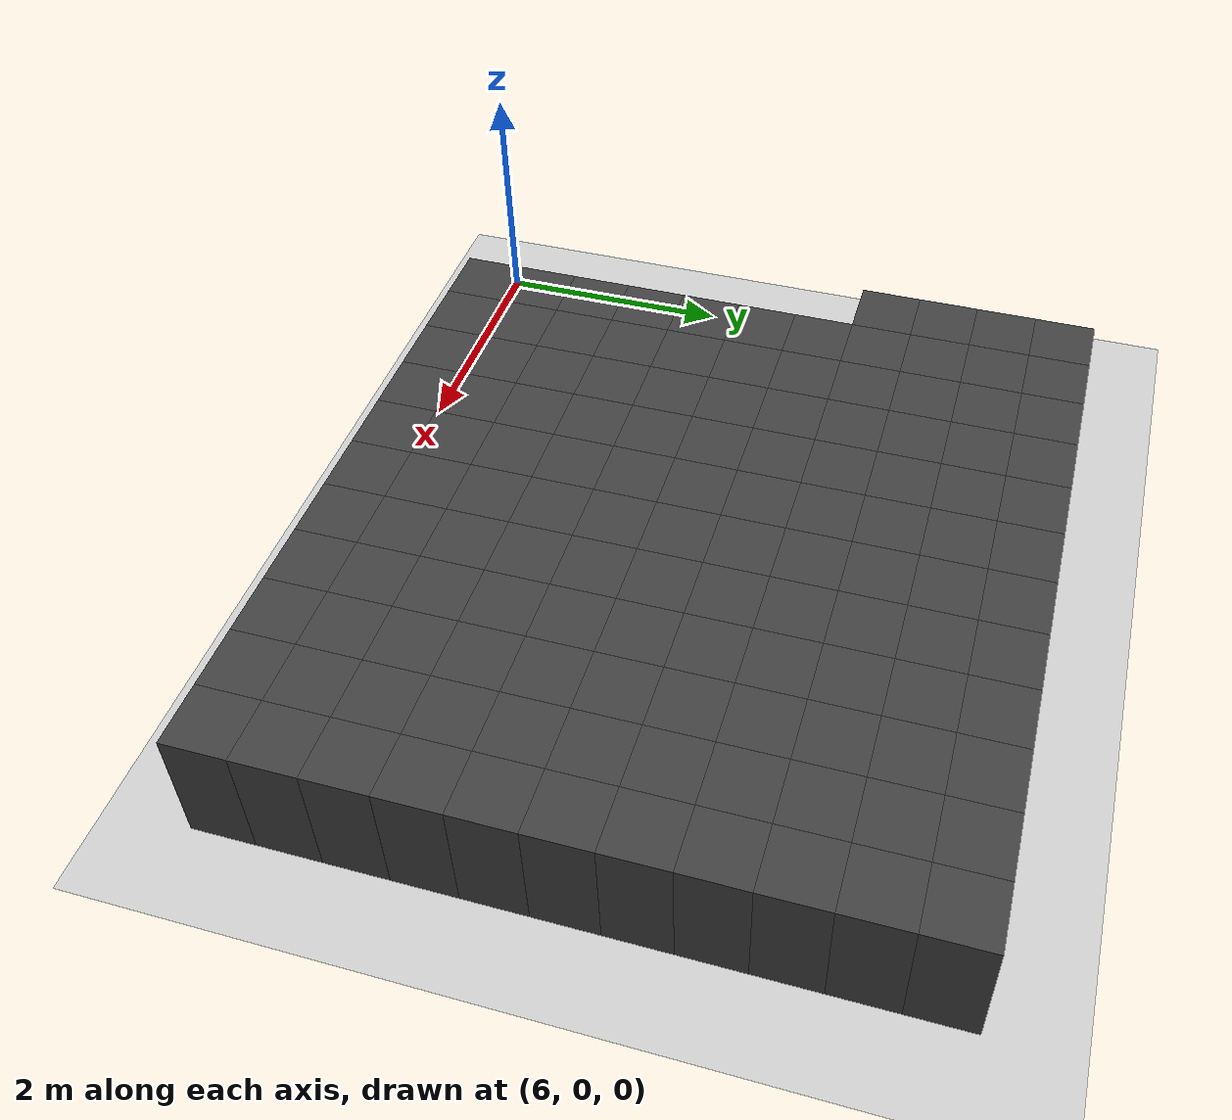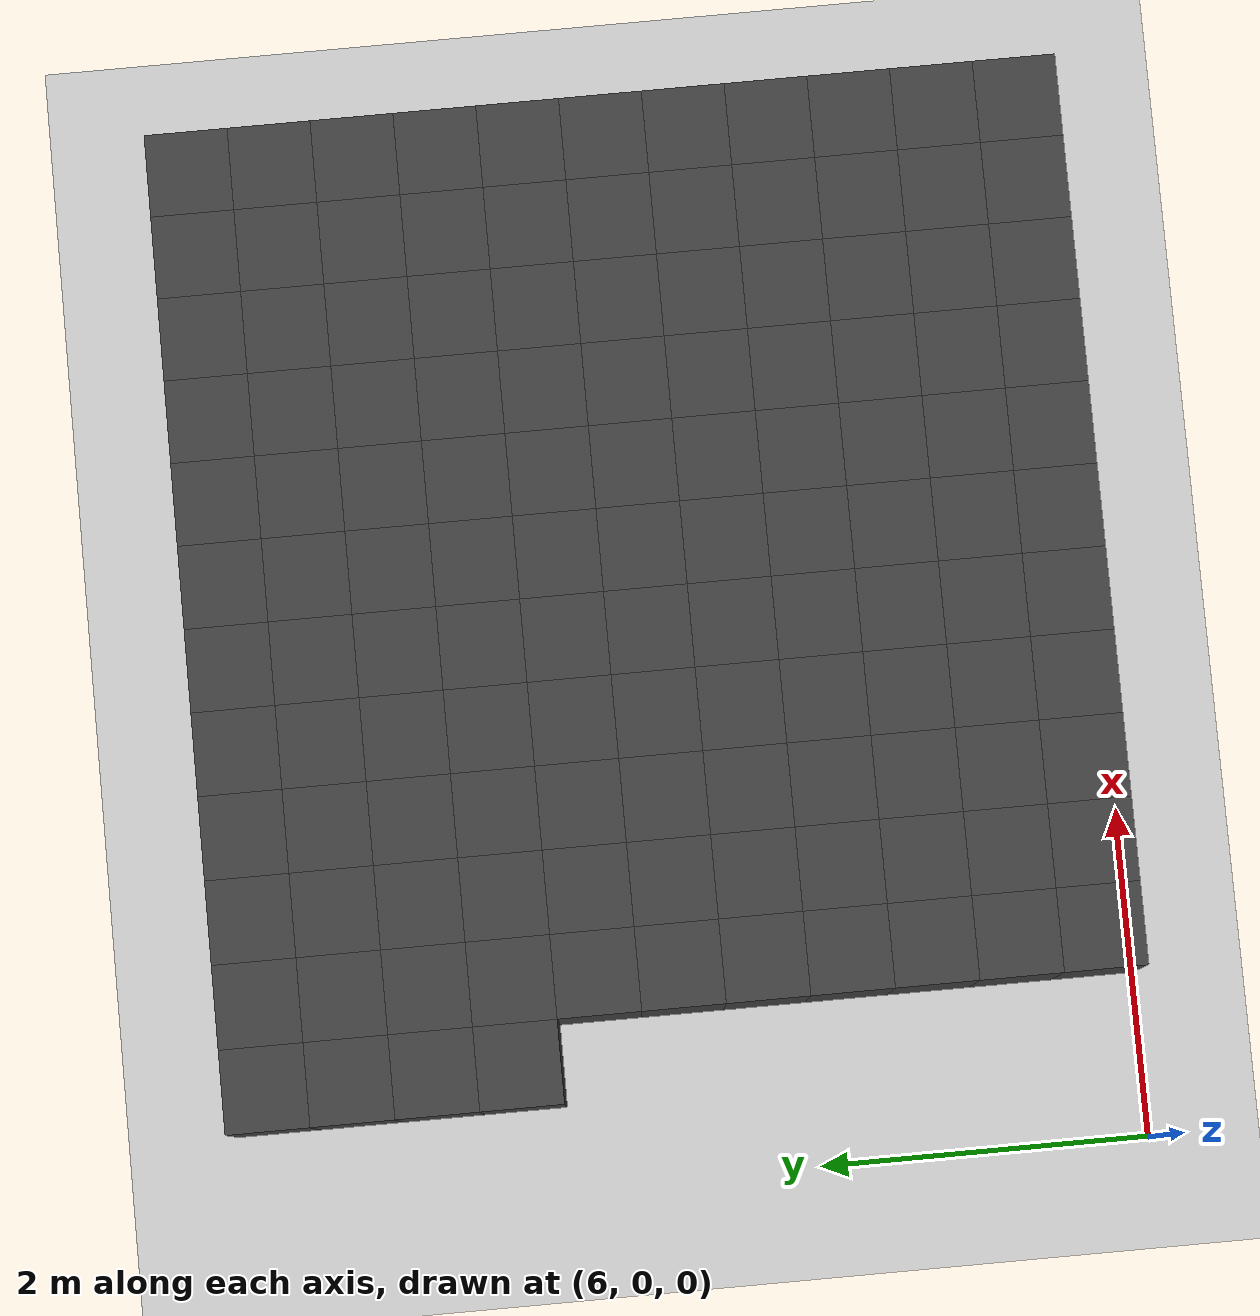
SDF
<sdf version="1.7">
 <world name="map_14802">
  <model name="ground_plane">
   <static>true</static>
   <link name="link">
    <collision name="collision">
     <geometry><plane><normal>0 0 1</normal><size>200 200</size></plane></geometry>
    </collision>
    <visual name="visual">
     <geometry><plane><normal>0 0 1</normal><size>200 200</size></plane></geometry>
     <material><ambient>0.8 0.8 0.8 1</ambient><diffuse>0.8 0.8 0.8 1</diffuse></material>
    </visual>
   </link>
  </model>
  <model name="maze_environment">
   <static>true</static>
   <link name="wall_514">
    <pose>6.750 5.250 0.500 0 0 0</pose>
    <collision name="col"><geometry><box><size>0.5 0.5 1.0</size></box></geometry></collision>
    <visual name="vis">
     <geometry><box><size>0.5 0.5 1.0</size></box></geometry>
     <material><ambient>0.15 0.15 0.15 1</ambient><diffuse>0.25 0.25 0.25 1</diffuse></material>
    </visual>
   </link>
   <link name="wall_515">
    <pose>7.250 5.250 0.500 0 0 0</pose>
    <collision name="col"><geometry><box><size>0.5 0.5 1.0</size></box></geometry></collision>
    <visual name="vis">
     <geometry><box><size>0.5 0.5 1.0</size></box></geometry>
     <material><ambient>0.15 0.15 0.15 1</ambient><diffuse>0.25 0.25 0.25 1</diffuse></material>
    </visual>
   </link>
   <link name="wall_516">
    <pose>7.750 5.250 0.500 0 0 0</pose>
    <collision name="col"><geometry><box><size>0.5 0.5 1.0</size></box></geometry></collision>
    <visual name="vis">
     <geometry><box><size>0.5 0.5 1.0</size></box></geometry>
     <material><ambient>0.15 0.15 0.15 1</ambient><diffuse>0.25 0.25 0.25 1</diffuse></material>
    </visual>
   </link>
   <link name="wall_517">
    <pose>8.250 5.250 0.500 0 0 0</pose>
    <collision name="col"><geometry><box><size>0.5 0.5 1.0</size></box></geometry></collision>
    <visual name="vis">
     <geometry><box><size>0.5 0.5 1.0</size></box></geometry>
     <material><ambient>0.15 0.15 0.15 1</ambient><diffuse>0.25 0.25 0.25 1</diffuse></material>
    </visual>
   </link>
   <link name="wall_518">
    <pose>8.750 5.250 0.500 0 0 0</pose>
    <collision name="col"><geometry><box><size>0.5 0.5 1.0</size></box></geometry></collision>
    <visual name="vis">
     <geometry><box><size>0.5 0.5 1.0</size></box></geometry>
     <material><ambient>0.15 0.15 0.15 1</ambient><diffuse>0.25 0.25 0.25 1</diffuse></material>
    </visual>
   </link>
   <link name="wall_519">
    <pose>9.250 5.250 0.500 0 0 0</pose>
    <collision name="col"><geometry><box><size>0.5 0.5 1.0</size></box></geometry></collision>
    <visual name="vis">
     <geometry><box><size>0.5 0.5 1.0</size></box></geometry>
     <material><ambient>0.15 0.15 0.15 1</ambient><diffuse>0.25 0.25 0.25 1</diffuse></material>
    </visual>
   </link>
   <link name="wall_520">
    <pose>9.750 5.250 0.500 0 0 0</pose>
    <collision name="col"><geometry><box><size>0.5 0.5 1.0</size></box></geometry></collision>
    <visual name="vis">
     <geometry><box><size>0.5 0.5 1.0</size></box></geometry>
     <material><ambient>0.15 0.15 0.15 1</ambient><diffuse>0.25 0.25 0.25 1</diffuse></material>
    </visual>
   </link>
   <link name="wall_521">
    <pose>10.250 5.250 0.500 0 0 0</pose>
    <collision name="col"><geometry><box><size>0.5 0.5 1.0</size></box></geometry></collision>
    <visual name="vis">
     <geometry><box><size>0.5 0.5 1.0</size></box></geometry>
     <material><ambient>0.15 0.15 0.15 1</ambient><diffuse>0.25 0.25 0.25 1</diffuse></material>
    </visual>
   </link>
   <link name="wall_522">
    <pose>10.750 5.250 0.500 0 0 0</pose>
    <collision name="col"><geometry><box><size>0.5 0.5 1.0</size></box></geometry></collision>
    <visual name="vis">
     <geometry><box><size>0.5 0.5 1.0</size></box></geometry>
     <material><ambient>0.15 0.15 0.15 1</ambient><diffuse>0.25 0.25 0.25 1</diffuse></material>
    </visual>
   </link>
   <link name="wall_523">
    <pose>11.250 5.250 0.500 0 0 0</pose>
    <collision name="col"><geometry><box><size>0.5 0.5 1.0</size></box></geometry></collision>
    <visual name="vis">
     <geometry><box><size>0.5 0.5 1.0</size></box></geometry>
     <material><ambient>0.15 0.15 0.15 1</ambient><diffuse>0.25 0.25 0.25 1</diffuse></material>
    </visual>
   </link>
   <link name="wall_524">
    <pose>11.750 5.250 0.500 0 0 0</pose>
    <collision name="col"><geometry><box><size>0.5 0.5 1.0</size></box></geometry></collision>
    <visual name="vis">
     <geometry><box><size>0.5 0.5 1.0</size></box></geometry>
     <material><ambient>0.15 0.15 0.15 1</ambient><diffuse>0.25 0.25 0.25 1</diffuse></material>
    </visual>
   </link>
   <link name="wall_525">
    <pose>12.250 5.250 0.500 0 0 0</pose>
    <collision name="col"><geometry><box><size>0.5 0.5 1.0</size></box></geometry></collision>
    <visual name="vis">
     <geometry><box><size>0.5 0.5 1.0</size></box></geometry>
     <material><ambient>0.15 0.15 0.15 1</ambient><diffuse>0.25 0.25 0.25 1</diffuse></material>
    </visual>
   </link>
   <link name="wall_554">
    <pose>6.750 4.750 0.500 0 0 0</pose>
    <collision name="col"><geometry><box><size>0.5 0.5 1.0</size></box></geometry></collision>
    <visual name="vis">
     <geometry><box><size>0.5 0.5 1.0</size></box></geometry>
     <material><ambient>0.15 0.15 0.15 1</ambient><diffuse>0.25 0.25 0.25 1</diffuse></material>
    </visual>
   </link>
   <link name="wall_555">
    <pose>7.250 4.750 0.500 0 0 0</pose>
    <collision name="col"><geometry><box><size>0.5 0.5 1.0</size></box></geometry></collision>
    <visual name="vis">
     <geometry><box><size>0.5 0.5 1.0</size></box></geometry>
     <material><ambient>0.15 0.15 0.15 1</ambient><diffuse>0.25 0.25 0.25 1</diffuse></material>
    </visual>
   </link>
   <link name="wall_556">
    <pose>7.750 4.750 0.500 0 0 0</pose>
    <collision name="col"><geometry><box><size>0.5 0.5 1.0</size></box></geometry></collision>
    <visual name="vis">
     <geometry><box><size>0.5 0.5 1.0</size></box></geometry>
     <material><ambient>0.15 0.15 0.15 1</ambient><diffuse>0.25 0.25 0.25 1</diffuse></material>
    </visual>
   </link>
   <link name="wall_557">
    <pose>8.250 4.750 0.500 0 0 0</pose>
    <collision name="col"><geometry><box><size>0.5 0.5 1.0</size></box></geometry></collision>
    <visual name="vis">
     <geometry><box><size>0.5 0.5 1.0</size></box></geometry>
     <material><ambient>0.15 0.15 0.15 1</ambient><diffuse>0.25 0.25 0.25 1</diffuse></material>
    </visual>
   </link>
   <link name="wall_558">
    <pose>8.750 4.750 0.500 0 0 0</pose>
    <collision name="col"><geometry><box><size>0.5 0.5 1.0</size></box></geometry></collision>
    <visual name="vis">
     <geometry><box><size>0.5 0.5 1.0</size></box></geometry>
     <material><ambient>0.15 0.15 0.15 1</ambient><diffuse>0.25 0.25 0.25 1</diffuse></material>
    </visual>
   </link>
   <link name="wall_559">
    <pose>9.250 4.750 0.500 0 0 0</pose>
    <collision name="col"><geometry><box><size>0.5 0.5 1.0</size></box></geometry></collision>
    <visual name="vis">
     <geometry><box><size>0.5 0.5 1.0</size></box></geometry>
     <material><ambient>0.15 0.15 0.15 1</ambient><diffuse>0.25 0.25 0.25 1</diffuse></material>
    </visual>
   </link>
   <link name="wall_560">
    <pose>9.750 4.750 0.500 0 0 0</pose>
    <collision name="col"><geometry><box><size>0.5 0.5 1.0</size></box></geometry></collision>
    <visual name="vis">
     <geometry><box><size>0.5 0.5 1.0</size></box></geometry>
     <material><ambient>0.15 0.15 0.15 1</ambient><diffuse>0.25 0.25 0.25 1</diffuse></material>
    </visual>
   </link>
   <link name="wall_561">
    <pose>10.250 4.750 0.500 0 0 0</pose>
    <collision name="col"><geometry><box><size>0.5 0.5 1.0</size></box></geometry></collision>
    <visual name="vis">
     <geometry><box><size>0.5 0.5 1.0</size></box></geometry>
     <material><ambient>0.15 0.15 0.15 1</ambient><diffuse>0.25 0.25 0.25 1</diffuse></material>
    </visual>
   </link>
   <link name="wall_562">
    <pose>10.750 4.750 0.500 0 0 0</pose>
    <collision name="col"><geometry><box><size>0.5 0.5 1.0</size></box></geometry></collision>
    <visual name="vis">
     <geometry><box><size>0.5 0.5 1.0</size></box></geometry>
     <material><ambient>0.15 0.15 0.15 1</ambient><diffuse>0.25 0.25 0.25 1</diffuse></material>
    </visual>
   </link>
   <link name="wall_563">
    <pose>11.250 4.750 0.500 0 0 0</pose>
    <collision name="col"><geometry><box><size>0.5 0.5 1.0</size></box></geometry></collision>
    <visual name="vis">
     <geometry><box><size>0.5 0.5 1.0</size></box></geometry>
     <material><ambient>0.15 0.15 0.15 1</ambient><diffuse>0.25 0.25 0.25 1</diffuse></material>
    </visual>
   </link>
   <link name="wall_564">
    <pose>11.750 4.750 0.500 0 0 0</pose>
    <collision name="col"><geometry><box><size>0.5 0.5 1.0</size></box></geometry></collision>
    <visual name="vis">
     <geometry><box><size>0.5 0.5 1.0</size></box></geometry>
     <material><ambient>0.15 0.15 0.15 1</ambient><diffuse>0.25 0.25 0.25 1</diffuse></material>
    </visual>
   </link>
   <link name="wall_565">
    <pose>12.250 4.750 0.500 0 0 0</pose>
    <collision name="col"><geometry><box><size>0.5 0.5 1.0</size></box></geometry></collision>
    <visual name="vis">
     <geometry><box><size>0.5 0.5 1.0</size></box></geometry>
     <material><ambient>0.15 0.15 0.15 1</ambient><diffuse>0.25 0.25 0.25 1</diffuse></material>
    </visual>
   </link>
   <link name="wall_594">
    <pose>6.750 4.250 0.500 0 0 0</pose>
    <collision name="col"><geometry><box><size>0.5 0.5 1.0</size></box></geometry></collision>
    <visual name="vis">
     <geometry><box><size>0.5 0.5 1.0</size></box></geometry>
     <material><ambient>0.15 0.15 0.15 1</ambient><diffuse>0.25 0.25 0.25 1</diffuse></material>
    </visual>
   </link>
   <link name="wall_595">
    <pose>7.250 4.250 0.500 0 0 0</pose>
    <collision name="col"><geometry><box><size>0.5 0.5 1.0</size></box></geometry></collision>
    <visual name="vis">
     <geometry><box><size>0.5 0.5 1.0</size></box></geometry>
     <material><ambient>0.15 0.15 0.15 1</ambient><diffuse>0.25 0.25 0.25 1</diffuse></material>
    </visual>
   </link>
   <link name="wall_596">
    <pose>7.750 4.250 0.500 0 0 0</pose>
    <collision name="col"><geometry><box><size>0.5 0.5 1.0</size></box></geometry></collision>
    <visual name="vis">
     <geometry><box><size>0.5 0.5 1.0</size></box></geometry>
     <material><ambient>0.15 0.15 0.15 1</ambient><diffuse>0.25 0.25 0.25 1</diffuse></material>
    </visual>
   </link>
   <link name="wall_597">
    <pose>8.250 4.250 0.500 0 0 0</pose>
    <collision name="col"><geometry><box><size>0.5 0.5 1.0</size></box></geometry></collision>
    <visual name="vis">
     <geometry><box><size>0.5 0.5 1.0</size></box></geometry>
     <material><ambient>0.15 0.15 0.15 1</ambient><diffuse>0.25 0.25 0.25 1</diffuse></material>
    </visual>
   </link>
   <link name="wall_598">
    <pose>8.750 4.250 0.500 0 0 0</pose>
    <collision name="col"><geometry><box><size>0.5 0.5 1.0</size></box></geometry></collision>
    <visual name="vis">
     <geometry><box><size>0.5 0.5 1.0</size></box></geometry>
     <material><ambient>0.15 0.15 0.15 1</ambient><diffuse>0.25 0.25 0.25 1</diffuse></material>
    </visual>
   </link>
   <link name="wall_599">
    <pose>9.250 4.250 0.500 0 0 0</pose>
    <collision name="col"><geometry><box><size>0.5 0.5 1.0</size></box></geometry></collision>
    <visual name="vis">
     <geometry><box><size>0.5 0.5 1.0</size></box></geometry>
     <material><ambient>0.15 0.15 0.15 1</ambient><diffuse>0.25 0.25 0.25 1</diffuse></material>
    </visual>
   </link>
   <link name="wall_600">
    <pose>9.750 4.250 0.500 0 0 0</pose>
    <collision name="col"><geometry><box><size>0.5 0.5 1.0</size></box></geometry></collision>
    <visual name="vis">
     <geometry><box><size>0.5 0.5 1.0</size></box></geometry>
     <material><ambient>0.15 0.15 0.15 1</ambient><diffuse>0.25 0.25 0.25 1</diffuse></material>
    </visual>
   </link>
   <link name="wall_601">
    <pose>10.250 4.250 0.500 0 0 0</pose>
    <collision name="col"><geometry><box><size>0.5 0.5 1.0</size></box></geometry></collision>
    <visual name="vis">
     <geometry><box><size>0.5 0.5 1.0</size></box></geometry>
     <material><ambient>0.15 0.15 0.15 1</ambient><diffuse>0.25 0.25 0.25 1</diffuse></material>
    </visual>
   </link>
   <link name="wall_602">
    <pose>10.750 4.250 0.500 0 0 0</pose>
    <collision name="col"><geometry><box><size>0.5 0.5 1.0</size></box></geometry></collision>
    <visual name="vis">
     <geometry><box><size>0.5 0.5 1.0</size></box></geometry>
     <material><ambient>0.15 0.15 0.15 1</ambient><diffuse>0.25 0.25 0.25 1</diffuse></material>
    </visual>
   </link>
   <link name="wall_603">
    <pose>11.250 4.250 0.500 0 0 0</pose>
    <collision name="col"><geometry><box><size>0.5 0.5 1.0</size></box></geometry></collision>
    <visual name="vis">
     <geometry><box><size>0.5 0.5 1.0</size></box></geometry>
     <material><ambient>0.15 0.15 0.15 1</ambient><diffuse>0.25 0.25 0.25 1</diffuse></material>
    </visual>
   </link>
   <link name="wall_604">
    <pose>11.750 4.250 0.500 0 0 0</pose>
    <collision name="col"><geometry><box><size>0.5 0.5 1.0</size></box></geometry></collision>
    <visual name="vis">
     <geometry><box><size>0.5 0.5 1.0</size></box></geometry>
     <material><ambient>0.15 0.15 0.15 1</ambient><diffuse>0.25 0.25 0.25 1</diffuse></material>
    </visual>
   </link>
   <link name="wall_605">
    <pose>12.250 4.250 0.500 0 0 0</pose>
    <collision name="col"><geometry><box><size>0.5 0.5 1.0</size></box></geometry></collision>
    <visual name="vis">
     <geometry><box><size>0.5 0.5 1.0</size></box></geometry>
     <material><ambient>0.15 0.15 0.15 1</ambient><diffuse>0.25 0.25 0.25 1</diffuse></material>
    </visual>
   </link>
   <link name="wall_634">
    <pose>6.750 3.750 0.500 0 0 0</pose>
    <collision name="col"><geometry><box><size>0.5 0.5 1.0</size></box></geometry></collision>
    <visual name="vis">
     <geometry><box><size>0.5 0.5 1.0</size></box></geometry>
     <material><ambient>0.15 0.15 0.15 1</ambient><diffuse>0.25 0.25 0.25 1</diffuse></material>
    </visual>
   </link>
   <link name="wall_635">
    <pose>7.250 3.750 0.500 0 0 0</pose>
    <collision name="col"><geometry><box><size>0.5 0.5 1.0</size></box></geometry></collision>
    <visual name="vis">
     <geometry><box><size>0.5 0.5 1.0</size></box></geometry>
     <material><ambient>0.15 0.15 0.15 1</ambient><diffuse>0.25 0.25 0.25 1</diffuse></material>
    </visual>
   </link>
   <link name="wall_636">
    <pose>7.750 3.750 0.500 0 0 0</pose>
    <collision name="col"><geometry><box><size>0.5 0.5 1.0</size></box></geometry></collision>
    <visual name="vis">
     <geometry><box><size>0.5 0.5 1.0</size></box></geometry>
     <material><ambient>0.15 0.15 0.15 1</ambient><diffuse>0.25 0.25 0.25 1</diffuse></material>
    </visual>
   </link>
   <link name="wall_637">
    <pose>8.250 3.750 0.500 0 0 0</pose>
    <collision name="col"><geometry><box><size>0.5 0.5 1.0</size></box></geometry></collision>
    <visual name="vis">
     <geometry><box><size>0.5 0.5 1.0</size></box></geometry>
     <material><ambient>0.15 0.15 0.15 1</ambient><diffuse>0.25 0.25 0.25 1</diffuse></material>
    </visual>
   </link>
   <link name="wall_638">
    <pose>8.750 3.750 0.500 0 0 0</pose>
    <collision name="col"><geometry><box><size>0.5 0.5 1.0</size></box></geometry></collision>
    <visual name="vis">
     <geometry><box><size>0.5 0.5 1.0</size></box></geometry>
     <material><ambient>0.15 0.15 0.15 1</ambient><diffuse>0.25 0.25 0.25 1</diffuse></material>
    </visual>
   </link>
   <link name="wall_639">
    <pose>9.250 3.750 0.500 0 0 0</pose>
    <collision name="col"><geometry><box><size>0.5 0.5 1.0</size></box></geometry></collision>
    <visual name="vis">
     <geometry><box><size>0.5 0.5 1.0</size></box></geometry>
     <material><ambient>0.15 0.15 0.15 1</ambient><diffuse>0.25 0.25 0.25 1</diffuse></material>
    </visual>
   </link>
   <link name="wall_640">
    <pose>9.750 3.750 0.500 0 0 0</pose>
    <collision name="col"><geometry><box><size>0.5 0.5 1.0</size></box></geometry></collision>
    <visual name="vis">
     <geometry><box><size>0.5 0.5 1.0</size></box></geometry>
     <material><ambient>0.15 0.15 0.15 1</ambient><diffuse>0.25 0.25 0.25 1</diffuse></material>
    </visual>
   </link>
   <link name="wall_641">
    <pose>10.250 3.750 0.500 0 0 0</pose>
    <collision name="col"><geometry><box><size>0.5 0.5 1.0</size></box></geometry></collision>
    <visual name="vis">
     <geometry><box><size>0.5 0.5 1.0</size></box></geometry>
     <material><ambient>0.15 0.15 0.15 1</ambient><diffuse>0.25 0.25 0.25 1</diffuse></material>
    </visual>
   </link>
   <link name="wall_642">
    <pose>10.750 3.750 0.500 0 0 0</pose>
    <collision name="col"><geometry><box><size>0.5 0.5 1.0</size></box></geometry></collision>
    <visual name="vis">
     <geometry><box><size>0.5 0.5 1.0</size></box></geometry>
     <material><ambient>0.15 0.15 0.15 1</ambient><diffuse>0.25 0.25 0.25 1</diffuse></material>
    </visual>
   </link>
   <link name="wall_643">
    <pose>11.250 3.750 0.500 0 0 0</pose>
    <collision name="col"><geometry><box><size>0.5 0.5 1.0</size></box></geometry></collision>
    <visual name="vis">
     <geometry><box><size>0.5 0.5 1.0</size></box></geometry>
     <material><ambient>0.15 0.15 0.15 1</ambient><diffuse>0.25 0.25 0.25 1</diffuse></material>
    </visual>
   </link>
   <link name="wall_644">
    <pose>11.750 3.750 0.500 0 0 0</pose>
    <collision name="col"><geometry><box><size>0.5 0.5 1.0</size></box></geometry></collision>
    <visual name="vis">
     <geometry><box><size>0.5 0.5 1.0</size></box></geometry>
     <material><ambient>0.15 0.15 0.15 1</ambient><diffuse>0.25 0.25 0.25 1</diffuse></material>
    </visual>
   </link>
   <link name="wall_645">
    <pose>12.250 3.750 0.500 0 0 0</pose>
    <collision name="col"><geometry><box><size>0.5 0.5 1.0</size></box></geometry></collision>
    <visual name="vis">
     <geometry><box><size>0.5 0.5 1.0</size></box></geometry>
     <material><ambient>0.15 0.15 0.15 1</ambient><diffuse>0.25 0.25 0.25 1</diffuse></material>
    </visual>
   </link>
   <link name="wall_676">
    <pose>7.250 3.250 0.500 0 0 0</pose>
    <collision name="col"><geometry><box><size>0.5 0.5 1.0</size></box></geometry></collision>
    <visual name="vis">
     <geometry><box><size>0.5 0.5 1.0</size></box></geometry>
     <material><ambient>0.15 0.15 0.15 1</ambient><diffuse>0.25 0.25 0.25 1</diffuse></material>
    </visual>
   </link>
   <link name="wall_677">
    <pose>7.750 3.250 0.500 0 0 0</pose>
    <collision name="col"><geometry><box><size>0.5 0.5 1.0</size></box></geometry></collision>
    <visual name="vis">
     <geometry><box><size>0.5 0.5 1.0</size></box></geometry>
     <material><ambient>0.15 0.15 0.15 1</ambient><diffuse>0.25 0.25 0.25 1</diffuse></material>
    </visual>
   </link>
   <link name="wall_678">
    <pose>8.250 3.250 0.500 0 0 0</pose>
    <collision name="col"><geometry><box><size>0.5 0.5 1.0</size></box></geometry></collision>
    <visual name="vis">
     <geometry><box><size>0.5 0.5 1.0</size></box></geometry>
     <material><ambient>0.15 0.15 0.15 1</ambient><diffuse>0.25 0.25 0.25 1</diffuse></material>
    </visual>
   </link>
   <link name="wall_679">
    <pose>8.750 3.250 0.500 0 0 0</pose>
    <collision name="col"><geometry><box><size>0.5 0.5 1.0</size></box></geometry></collision>
    <visual name="vis">
     <geometry><box><size>0.5 0.5 1.0</size></box></geometry>
     <material><ambient>0.15 0.15 0.15 1</ambient><diffuse>0.25 0.25 0.25 1</diffuse></material>
    </visual>
   </link>
   <link name="wall_680">
    <pose>9.250 3.250 0.500 0 0 0</pose>
    <collision name="col"><geometry><box><size>0.5 0.5 1.0</size></box></geometry></collision>
    <visual name="vis">
     <geometry><box><size>0.5 0.5 1.0</size></box></geometry>
     <material><ambient>0.15 0.15 0.15 1</ambient><diffuse>0.25 0.25 0.25 1</diffuse></material>
    </visual>
   </link>
   <link name="wall_681">
    <pose>9.750 3.250 0.500 0 0 0</pose>
    <collision name="col"><geometry><box><size>0.5 0.5 1.0</size></box></geometry></collision>
    <visual name="vis">
     <geometry><box><size>0.5 0.5 1.0</size></box></geometry>
     <material><ambient>0.15 0.15 0.15 1</ambient><diffuse>0.25 0.25 0.25 1</diffuse></material>
    </visual>
   </link>
   <link name="wall_682">
    <pose>10.250 3.250 0.500 0 0 0</pose>
    <collision name="col"><geometry><box><size>0.5 0.5 1.0</size></box></geometry></collision>
    <visual name="vis">
     <geometry><box><size>0.5 0.5 1.0</size></box></geometry>
     <material><ambient>0.15 0.15 0.15 1</ambient><diffuse>0.25 0.25 0.25 1</diffuse></material>
    </visual>
   </link>
   <link name="wall_683">
    <pose>10.750 3.250 0.500 0 0 0</pose>
    <collision name="col"><geometry><box><size>0.5 0.5 1.0</size></box></geometry></collision>
    <visual name="vis">
     <geometry><box><size>0.5 0.5 1.0</size></box></geometry>
     <material><ambient>0.15 0.15 0.15 1</ambient><diffuse>0.25 0.25 0.25 1</diffuse></material>
    </visual>
   </link>
   <link name="wall_684">
    <pose>11.250 3.250 0.500 0 0 0</pose>
    <collision name="col"><geometry><box><size>0.5 0.5 1.0</size></box></geometry></collision>
    <visual name="vis">
     <geometry><box><size>0.5 0.5 1.0</size></box></geometry>
     <material><ambient>0.15 0.15 0.15 1</ambient><diffuse>0.25 0.25 0.25 1</diffuse></material>
    </visual>
   </link>
   <link name="wall_685">
    <pose>11.750 3.250 0.500 0 0 0</pose>
    <collision name="col"><geometry><box><size>0.5 0.5 1.0</size></box></geometry></collision>
    <visual name="vis">
     <geometry><box><size>0.5 0.5 1.0</size></box></geometry>
     <material><ambient>0.15 0.15 0.15 1</ambient><diffuse>0.25 0.25 0.25 1</diffuse></material>
    </visual>
   </link>
   <link name="wall_686">
    <pose>12.250 3.250 0.500 0 0 0</pose>
    <collision name="col"><geometry><box><size>0.5 0.5 1.0</size></box></geometry></collision>
    <visual name="vis">
     <geometry><box><size>0.5 0.5 1.0</size></box></geometry>
     <material><ambient>0.15 0.15 0.15 1</ambient><diffuse>0.25 0.25 0.25 1</diffuse></material>
    </visual>
   </link>
   <link name="wall_716">
    <pose>7.250 2.750 0.500 0 0 0</pose>
    <collision name="col"><geometry><box><size>0.5 0.5 1.0</size></box></geometry></collision>
    <visual name="vis">
     <geometry><box><size>0.5 0.5 1.0</size></box></geometry>
     <material><ambient>0.15 0.15 0.15 1</ambient><diffuse>0.25 0.25 0.25 1</diffuse></material>
    </visual>
   </link>
   <link name="wall_717">
    <pose>7.750 2.750 0.500 0 0 0</pose>
    <collision name="col"><geometry><box><size>0.5 0.5 1.0</size></box></geometry></collision>
    <visual name="vis">
     <geometry><box><size>0.5 0.5 1.0</size></box></geometry>
     <material><ambient>0.15 0.15 0.15 1</ambient><diffuse>0.25 0.25 0.25 1</diffuse></material>
    </visual>
   </link>
   <link name="wall_718">
    <pose>8.250 2.750 0.500 0 0 0</pose>
    <collision name="col"><geometry><box><size>0.5 0.5 1.0</size></box></geometry></collision>
    <visual name="vis">
     <geometry><box><size>0.5 0.5 1.0</size></box></geometry>
     <material><ambient>0.15 0.15 0.15 1</ambient><diffuse>0.25 0.25 0.25 1</diffuse></material>
    </visual>
   </link>
   <link name="wall_719">
    <pose>8.750 2.750 0.500 0 0 0</pose>
    <collision name="col"><geometry><box><size>0.5 0.5 1.0</size></box></geometry></collision>
    <visual name="vis">
     <geometry><box><size>0.5 0.5 1.0</size></box></geometry>
     <material><ambient>0.15 0.15 0.15 1</ambient><diffuse>0.25 0.25 0.25 1</diffuse></material>
    </visual>
   </link>
   <link name="wall_720">
    <pose>9.250 2.750 0.500 0 0 0</pose>
    <collision name="col"><geometry><box><size>0.5 0.5 1.0</size></box></geometry></collision>
    <visual name="vis">
     <geometry><box><size>0.5 0.5 1.0</size></box></geometry>
     <material><ambient>0.15 0.15 0.15 1</ambient><diffuse>0.25 0.25 0.25 1</diffuse></material>
    </visual>
   </link>
   <link name="wall_721">
    <pose>9.750 2.750 0.500 0 0 0</pose>
    <collision name="col"><geometry><box><size>0.5 0.5 1.0</size></box></geometry></collision>
    <visual name="vis">
     <geometry><box><size>0.5 0.5 1.0</size></box></geometry>
     <material><ambient>0.15 0.15 0.15 1</ambient><diffuse>0.25 0.25 0.25 1</diffuse></material>
    </visual>
   </link>
   <link name="wall_722">
    <pose>10.250 2.750 0.500 0 0 0</pose>
    <collision name="col"><geometry><box><size>0.5 0.5 1.0</size></box></geometry></collision>
    <visual name="vis">
     <geometry><box><size>0.5 0.5 1.0</size></box></geometry>
     <material><ambient>0.15 0.15 0.15 1</ambient><diffuse>0.25 0.25 0.25 1</diffuse></material>
    </visual>
   </link>
   <link name="wall_723">
    <pose>10.750 2.750 0.500 0 0 0</pose>
    <collision name="col"><geometry><box><size>0.5 0.5 1.0</size></box></geometry></collision>
    <visual name="vis">
     <geometry><box><size>0.5 0.5 1.0</size></box></geometry>
     <material><ambient>0.15 0.15 0.15 1</ambient><diffuse>0.25 0.25 0.25 1</diffuse></material>
    </visual>
   </link>
   <link name="wall_724">
    <pose>11.250 2.750 0.500 0 0 0</pose>
    <collision name="col"><geometry><box><size>0.5 0.5 1.0</size></box></geometry></collision>
    <visual name="vis">
     <geometry><box><size>0.5 0.5 1.0</size></box></geometry>
     <material><ambient>0.15 0.15 0.15 1</ambient><diffuse>0.25 0.25 0.25 1</diffuse></material>
    </visual>
   </link>
   <link name="wall_725">
    <pose>11.750 2.750 0.500 0 0 0</pose>
    <collision name="col"><geometry><box><size>0.5 0.5 1.0</size></box></geometry></collision>
    <visual name="vis">
     <geometry><box><size>0.5 0.5 1.0</size></box></geometry>
     <material><ambient>0.15 0.15 0.15 1</ambient><diffuse>0.25 0.25 0.25 1</diffuse></material>
    </visual>
   </link>
   <link name="wall_726">
    <pose>12.250 2.750 0.500 0 0 0</pose>
    <collision name="col"><geometry><box><size>0.5 0.5 1.0</size></box></geometry></collision>
    <visual name="vis">
     <geometry><box><size>0.5 0.5 1.0</size></box></geometry>
     <material><ambient>0.15 0.15 0.15 1</ambient><diffuse>0.25 0.25 0.25 1</diffuse></material>
    </visual>
   </link>
   <link name="wall_755">
    <pose>7.250 2.250 0.500 0 0 0</pose>
    <collision name="col"><geometry><box><size>0.5 0.5 1.0</size></box></geometry></collision>
    <visual name="vis">
     <geometry><box><size>0.5 0.5 1.0</size></box></geometry>
     <material><ambient>0.15 0.15 0.15 1</ambient><diffuse>0.25 0.25 0.25 1</diffuse></material>
    </visual>
   </link>
   <link name="wall_756">
    <pose>7.750 2.250 0.500 0 0 0</pose>
    <collision name="col"><geometry><box><size>0.5 0.5 1.0</size></box></geometry></collision>
    <visual name="vis">
     <geometry><box><size>0.5 0.5 1.0</size></box></geometry>
     <material><ambient>0.15 0.15 0.15 1</ambient><diffuse>0.25 0.25 0.25 1</diffuse></material>
    </visual>
   </link>
   <link name="wall_757">
    <pose>8.250 2.250 0.500 0 0 0</pose>
    <collision name="col"><geometry><box><size>0.5 0.5 1.0</size></box></geometry></collision>
    <visual name="vis">
     <geometry><box><size>0.5 0.5 1.0</size></box></geometry>
     <material><ambient>0.15 0.15 0.15 1</ambient><diffuse>0.25 0.25 0.25 1</diffuse></material>
    </visual>
   </link>
   <link name="wall_758">
    <pose>8.750 2.250 0.500 0 0 0</pose>
    <collision name="col"><geometry><box><size>0.5 0.5 1.0</size></box></geometry></collision>
    <visual name="vis">
     <geometry><box><size>0.5 0.5 1.0</size></box></geometry>
     <material><ambient>0.15 0.15 0.15 1</ambient><diffuse>0.25 0.25 0.25 1</diffuse></material>
    </visual>
   </link>
   <link name="wall_759">
    <pose>9.250 2.250 0.500 0 0 0</pose>
    <collision name="col"><geometry><box><size>0.5 0.5 1.0</size></box></geometry></collision>
    <visual name="vis">
     <geometry><box><size>0.5 0.5 1.0</size></box></geometry>
     <material><ambient>0.15 0.15 0.15 1</ambient><diffuse>0.25 0.25 0.25 1</diffuse></material>
    </visual>
   </link>
   <link name="wall_760">
    <pose>9.750 2.250 0.500 0 0 0</pose>
    <collision name="col"><geometry><box><size>0.5 0.5 1.0</size></box></geometry></collision>
    <visual name="vis">
     <geometry><box><size>0.5 0.5 1.0</size></box></geometry>
     <material><ambient>0.15 0.15 0.15 1</ambient><diffuse>0.25 0.25 0.25 1</diffuse></material>
    </visual>
   </link>
   <link name="wall_761">
    <pose>10.250 2.250 0.500 0 0 0</pose>
    <collision name="col"><geometry><box><size>0.5 0.5 1.0</size></box></geometry></collision>
    <visual name="vis">
     <geometry><box><size>0.5 0.5 1.0</size></box></geometry>
     <material><ambient>0.15 0.15 0.15 1</ambient><diffuse>0.25 0.25 0.25 1</diffuse></material>
    </visual>
   </link>
   <link name="wall_762">
    <pose>10.750 2.250 0.500 0 0 0</pose>
    <collision name="col"><geometry><box><size>0.5 0.5 1.0</size></box></geometry></collision>
    <visual name="vis">
     <geometry><box><size>0.5 0.5 1.0</size></box></geometry>
     <material><ambient>0.15 0.15 0.15 1</ambient><diffuse>0.25 0.25 0.25 1</diffuse></material>
    </visual>
   </link>
   <link name="wall_763">
    <pose>11.250 2.250 0.500 0 0 0</pose>
    <collision name="col"><geometry><box><size>0.5 0.5 1.0</size></box></geometry></collision>
    <visual name="vis">
     <geometry><box><size>0.5 0.5 1.0</size></box></geometry>
     <material><ambient>0.15 0.15 0.15 1</ambient><diffuse>0.25 0.25 0.25 1</diffuse></material>
    </visual>
   </link>
   <link name="wall_764">
    <pose>11.750 2.250 0.500 0 0 0</pose>
    <collision name="col"><geometry><box><size>0.5 0.5 1.0</size></box></geometry></collision>
    <visual name="vis">
     <geometry><box><size>0.5 0.5 1.0</size></box></geometry>
     <material><ambient>0.15 0.15 0.15 1</ambient><diffuse>0.25 0.25 0.25 1</diffuse></material>
    </visual>
   </link>
   <link name="wall_765">
    <pose>12.250 2.250 0.500 0 0 0</pose>
    <collision name="col"><geometry><box><size>0.5 0.5 1.0</size></box></geometry></collision>
    <visual name="vis">
     <geometry><box><size>0.5 0.5 1.0</size></box></geometry>
     <material><ambient>0.15 0.15 0.15 1</ambient><diffuse>0.25 0.25 0.25 1</diffuse></material>
    </visual>
   </link>
   <link name="wall_792">
    <pose>7.250 1.750 0.500 0 0 0</pose>
    <collision name="col"><geometry><box><size>0.5 0.5 1.0</size></box></geometry></collision>
    <visual name="vis">
     <geometry><box><size>0.5 0.5 1.0</size></box></geometry>
     <material><ambient>0.15 0.15 0.15 1</ambient><diffuse>0.25 0.25 0.25 1</diffuse></material>
    </visual>
   </link>
   <link name="wall_793">
    <pose>7.750 1.750 0.500 0 0 0</pose>
    <collision name="col"><geometry><box><size>0.5 0.5 1.0</size></box></geometry></collision>
    <visual name="vis">
     <geometry><box><size>0.5 0.5 1.0</size></box></geometry>
     <material><ambient>0.15 0.15 0.15 1</ambient><diffuse>0.25 0.25 0.25 1</diffuse></material>
    </visual>
   </link>
   <link name="wall_794">
    <pose>8.250 1.750 0.500 0 0 0</pose>
    <collision name="col"><geometry><box><size>0.5 0.5 1.0</size></box></geometry></collision>
    <visual name="vis">
     <geometry><box><size>0.5 0.5 1.0</size></box></geometry>
     <material><ambient>0.15 0.15 0.15 1</ambient><diffuse>0.25 0.25 0.25 1</diffuse></material>
    </visual>
   </link>
   <link name="wall_795">
    <pose>8.750 1.750 0.500 0 0 0</pose>
    <collision name="col"><geometry><box><size>0.5 0.5 1.0</size></box></geometry></collision>
    <visual name="vis">
     <geometry><box><size>0.5 0.5 1.0</size></box></geometry>
     <material><ambient>0.15 0.15 0.15 1</ambient><diffuse>0.25 0.25 0.25 1</diffuse></material>
    </visual>
   </link>
   <link name="wall_796">
    <pose>9.250 1.750 0.500 0 0 0</pose>
    <collision name="col"><geometry><box><size>0.5 0.5 1.0</size></box></geometry></collision>
    <visual name="vis">
     <geometry><box><size>0.5 0.5 1.0</size></box></geometry>
     <material><ambient>0.15 0.15 0.15 1</ambient><diffuse>0.25 0.25 0.25 1</diffuse></material>
    </visual>
   </link>
   <link name="wall_797">
    <pose>9.750 1.750 0.500 0 0 0</pose>
    <collision name="col"><geometry><box><size>0.5 0.5 1.0</size></box></geometry></collision>
    <visual name="vis">
     <geometry><box><size>0.5 0.5 1.0</size></box></geometry>
     <material><ambient>0.15 0.15 0.15 1</ambient><diffuse>0.25 0.25 0.25 1</diffuse></material>
    </visual>
   </link>
   <link name="wall_798">
    <pose>10.250 1.750 0.500 0 0 0</pose>
    <collision name="col"><geometry><box><size>0.5 0.5 1.0</size></box></geometry></collision>
    <visual name="vis">
     <geometry><box><size>0.5 0.5 1.0</size></box></geometry>
     <material><ambient>0.15 0.15 0.15 1</ambient><diffuse>0.25 0.25 0.25 1</diffuse></material>
    </visual>
   </link>
   <link name="wall_799">
    <pose>10.750 1.750 0.500 0 0 0</pose>
    <collision name="col"><geometry><box><size>0.5 0.5 1.0</size></box></geometry></collision>
    <visual name="vis">
     <geometry><box><size>0.5 0.5 1.0</size></box></geometry>
     <material><ambient>0.15 0.15 0.15 1</ambient><diffuse>0.25 0.25 0.25 1</diffuse></material>
    </visual>
   </link>
   <link name="wall_800">
    <pose>11.250 1.750 0.500 0 0 0</pose>
    <collision name="col"><geometry><box><size>0.5 0.5 1.0</size></box></geometry></collision>
    <visual name="vis">
     <geometry><box><size>0.5 0.5 1.0</size></box></geometry>
     <material><ambient>0.15 0.15 0.15 1</ambient><diffuse>0.25 0.25 0.25 1</diffuse></material>
    </visual>
   </link>
   <link name="wall_801">
    <pose>11.750 1.750 0.500 0 0 0</pose>
    <collision name="col"><geometry><box><size>0.5 0.5 1.0</size></box></geometry></collision>
    <visual name="vis">
     <geometry><box><size>0.5 0.5 1.0</size></box></geometry>
     <material><ambient>0.15 0.15 0.15 1</ambient><diffuse>0.25 0.25 0.25 1</diffuse></material>
    </visual>
   </link>
   <link name="wall_802">
    <pose>12.250 1.750 0.500 0 0 0</pose>
    <collision name="col"><geometry><box><size>0.5 0.5 1.0</size></box></geometry></collision>
    <visual name="vis">
     <geometry><box><size>0.5 0.5 1.0</size></box></geometry>
     <material><ambient>0.15 0.15 0.15 1</ambient><diffuse>0.25 0.25 0.25 1</diffuse></material>
    </visual>
   </link>
   <link name="wall_829">
    <pose>7.250 1.250 0.500 0 0 0</pose>
    <collision name="col"><geometry><box><size>0.5 0.5 1.0</size></box></geometry></collision>
    <visual name="vis">
     <geometry><box><size>0.5 0.5 1.0</size></box></geometry>
     <material><ambient>0.15 0.15 0.15 1</ambient><diffuse>0.25 0.25 0.25 1</diffuse></material>
    </visual>
   </link>
   <link name="wall_830">
    <pose>7.750 1.250 0.500 0 0 0</pose>
    <collision name="col"><geometry><box><size>0.5 0.5 1.0</size></box></geometry></collision>
    <visual name="vis">
     <geometry><box><size>0.5 0.5 1.0</size></box></geometry>
     <material><ambient>0.15 0.15 0.15 1</ambient><diffuse>0.25 0.25 0.25 1</diffuse></material>
    </visual>
   </link>
   <link name="wall_831">
    <pose>8.250 1.250 0.500 0 0 0</pose>
    <collision name="col"><geometry><box><size>0.5 0.5 1.0</size></box></geometry></collision>
    <visual name="vis">
     <geometry><box><size>0.5 0.5 1.0</size></box></geometry>
     <material><ambient>0.15 0.15 0.15 1</ambient><diffuse>0.25 0.25 0.25 1</diffuse></material>
    </visual>
   </link>
   <link name="wall_832">
    <pose>8.750 1.250 0.500 0 0 0</pose>
    <collision name="col"><geometry><box><size>0.5 0.5 1.0</size></box></geometry></collision>
    <visual name="vis">
     <geometry><box><size>0.5 0.5 1.0</size></box></geometry>
     <material><ambient>0.15 0.15 0.15 1</ambient><diffuse>0.25 0.25 0.25 1</diffuse></material>
    </visual>
   </link>
   <link name="wall_833">
    <pose>9.250 1.250 0.500 0 0 0</pose>
    <collision name="col"><geometry><box><size>0.5 0.5 1.0</size></box></geometry></collision>
    <visual name="vis">
     <geometry><box><size>0.5 0.5 1.0</size></box></geometry>
     <material><ambient>0.15 0.15 0.15 1</ambient><diffuse>0.25 0.25 0.25 1</diffuse></material>
    </visual>
   </link>
   <link name="wall_834">
    <pose>9.750 1.250 0.500 0 0 0</pose>
    <collision name="col"><geometry><box><size>0.5 0.5 1.0</size></box></geometry></collision>
    <visual name="vis">
     <geometry><box><size>0.5 0.5 1.0</size></box></geometry>
     <material><ambient>0.15 0.15 0.15 1</ambient><diffuse>0.25 0.25 0.25 1</diffuse></material>
    </visual>
   </link>
   <link name="wall_835">
    <pose>10.250 1.250 0.500 0 0 0</pose>
    <collision name="col"><geometry><box><size>0.5 0.5 1.0</size></box></geometry></collision>
    <visual name="vis">
     <geometry><box><size>0.5 0.5 1.0</size></box></geometry>
     <material><ambient>0.15 0.15 0.15 1</ambient><diffuse>0.25 0.25 0.25 1</diffuse></material>
    </visual>
   </link>
   <link name="wall_836">
    <pose>10.750 1.250 0.500 0 0 0</pose>
    <collision name="col"><geometry><box><size>0.5 0.5 1.0</size></box></geometry></collision>
    <visual name="vis">
     <geometry><box><size>0.5 0.5 1.0</size></box></geometry>
     <material><ambient>0.15 0.15 0.15 1</ambient><diffuse>0.25 0.25 0.25 1</diffuse></material>
    </visual>
   </link>
   <link name="wall_837">
    <pose>11.250 1.250 0.500 0 0 0</pose>
    <collision name="col"><geometry><box><size>0.5 0.5 1.0</size></box></geometry></collision>
    <visual name="vis">
     <geometry><box><size>0.5 0.5 1.0</size></box></geometry>
     <material><ambient>0.15 0.15 0.15 1</ambient><diffuse>0.25 0.25 0.25 1</diffuse></material>
    </visual>
   </link>
   <link name="wall_838">
    <pose>11.750 1.250 0.500 0 0 0</pose>
    <collision name="col"><geometry><box><size>0.5 0.5 1.0</size></box></geometry></collision>
    <visual name="vis">
     <geometry><box><size>0.5 0.5 1.0</size></box></geometry>
     <material><ambient>0.15 0.15 0.15 1</ambient><diffuse>0.25 0.25 0.25 1</diffuse></material>
    </visual>
   </link>
   <link name="wall_839">
    <pose>12.250 1.250 0.500 0 0 0</pose>
    <collision name="col"><geometry><box><size>0.5 0.5 1.0</size></box></geometry></collision>
    <visual name="vis">
     <geometry><box><size>0.5 0.5 1.0</size></box></geometry>
     <material><ambient>0.15 0.15 0.15 1</ambient><diffuse>0.25 0.25 0.25 1</diffuse></material>
    </visual>
   </link>
   <link name="wall_860">
    <pose>7.250 0.750 0.500 0 0 0</pose>
    <collision name="col"><geometry><box><size>0.5 0.5 1.0</size></box></geometry></collision>
    <visual name="vis">
     <geometry><box><size>0.5 0.5 1.0</size></box></geometry>
     <material><ambient>0.15 0.15 0.15 1</ambient><diffuse>0.25 0.25 0.25 1</diffuse></material>
    </visual>
   </link>
   <link name="wall_861">
    <pose>7.750 0.750 0.500 0 0 0</pose>
    <collision name="col"><geometry><box><size>0.5 0.5 1.0</size></box></geometry></collision>
    <visual name="vis">
     <geometry><box><size>0.5 0.5 1.0</size></box></geometry>
     <material><ambient>0.15 0.15 0.15 1</ambient><diffuse>0.25 0.25 0.25 1</diffuse></material>
    </visual>
   </link>
   <link name="wall_862">
    <pose>8.250 0.750 0.500 0 0 0</pose>
    <collision name="col"><geometry><box><size>0.5 0.5 1.0</size></box></geometry></collision>
    <visual name="vis">
     <geometry><box><size>0.5 0.5 1.0</size></box></geometry>
     <material><ambient>0.15 0.15 0.15 1</ambient><diffuse>0.25 0.25 0.25 1</diffuse></material>
    </visual>
   </link>
   <link name="wall_863">
    <pose>8.750 0.750 0.500 0 0 0</pose>
    <collision name="col"><geometry><box><size>0.5 0.5 1.0</size></box></geometry></collision>
    <visual name="vis">
     <geometry><box><size>0.5 0.5 1.0</size></box></geometry>
     <material><ambient>0.15 0.15 0.15 1</ambient><diffuse>0.25 0.25 0.25 1</diffuse></material>
    </visual>
   </link>
   <link name="wall_864">
    <pose>9.250 0.750 0.500 0 0 0</pose>
    <collision name="col"><geometry><box><size>0.5 0.5 1.0</size></box></geometry></collision>
    <visual name="vis">
     <geometry><box><size>0.5 0.5 1.0</size></box></geometry>
     <material><ambient>0.15 0.15 0.15 1</ambient><diffuse>0.25 0.25 0.25 1</diffuse></material>
    </visual>
   </link>
   <link name="wall_865">
    <pose>9.750 0.750 0.500 0 0 0</pose>
    <collision name="col"><geometry><box><size>0.5 0.5 1.0</size></box></geometry></collision>
    <visual name="vis">
     <geometry><box><size>0.5 0.5 1.0</size></box></geometry>
     <material><ambient>0.15 0.15 0.15 1</ambient><diffuse>0.25 0.25 0.25 1</diffuse></material>
    </visual>
   </link>
   <link name="wall_866">
    <pose>10.250 0.750 0.500 0 0 0</pose>
    <collision name="col"><geometry><box><size>0.5 0.5 1.0</size></box></geometry></collision>
    <visual name="vis">
     <geometry><box><size>0.5 0.5 1.0</size></box></geometry>
     <material><ambient>0.15 0.15 0.15 1</ambient><diffuse>0.25 0.25 0.25 1</diffuse></material>
    </visual>
   </link>
   <link name="wall_867">
    <pose>10.750 0.750 0.500 0 0 0</pose>
    <collision name="col"><geometry><box><size>0.5 0.5 1.0</size></box></geometry></collision>
    <visual name="vis">
     <geometry><box><size>0.5 0.5 1.0</size></box></geometry>
     <material><ambient>0.15 0.15 0.15 1</ambient><diffuse>0.25 0.25 0.25 1</diffuse></material>
    </visual>
   </link>
   <link name="wall_868">
    <pose>11.250 0.750 0.500 0 0 0</pose>
    <collision name="col"><geometry><box><size>0.5 0.5 1.0</size></box></geometry></collision>
    <visual name="vis">
     <geometry><box><size>0.5 0.5 1.0</size></box></geometry>
     <material><ambient>0.15 0.15 0.15 1</ambient><diffuse>0.25 0.25 0.25 1</diffuse></material>
    </visual>
   </link>
   <link name="wall_869">
    <pose>11.750 0.750 0.500 0 0 0</pose>
    <collision name="col"><geometry><box><size>0.5 0.5 1.0</size></box></geometry></collision>
    <visual name="vis">
     <geometry><box><size>0.5 0.5 1.0</size></box></geometry>
     <material><ambient>0.15 0.15 0.15 1</ambient><diffuse>0.25 0.25 0.25 1</diffuse></material>
    </visual>
   </link>
   <link name="wall_870">
    <pose>12.250 0.750 0.500 0 0 0</pose>
    <collision name="col"><geometry><box><size>0.5 0.5 1.0</size></box></geometry></collision>
    <visual name="vis">
     <geometry><box><size>0.5 0.5 1.0</size></box></geometry>
     <material><ambient>0.15 0.15 0.15 1</ambient><diffuse>0.25 0.25 0.25 1</diffuse></material>
    </visual>
   </link>
   <link name="wall_891">
    <pose>7.250 0.250 0.500 0 0 0</pose>
    <collision name="col"><geometry><box><size>0.5 0.5 1.0</size></box></geometry></collision>
    <visual name="vis">
     <geometry><box><size>0.5 0.5 1.0</size></box></geometry>
     <material><ambient>0.15 0.15 0.15 1</ambient><diffuse>0.25 0.25 0.25 1</diffuse></material>
    </visual>
   </link>
   <link name="wall_892">
    <pose>7.750 0.250 0.500 0 0 0</pose>
    <collision name="col"><geometry><box><size>0.5 0.5 1.0</size></box></geometry></collision>
    <visual name="vis">
     <geometry><box><size>0.5 0.5 1.0</size></box></geometry>
     <material><ambient>0.15 0.15 0.15 1</ambient><diffuse>0.25 0.25 0.25 1</diffuse></material>
    </visual>
   </link>
   <link name="wall_893">
    <pose>8.250 0.250 0.500 0 0 0</pose>
    <collision name="col"><geometry><box><size>0.5 0.5 1.0</size></box></geometry></collision>
    <visual name="vis">
     <geometry><box><size>0.5 0.5 1.0</size></box></geometry>
     <material><ambient>0.15 0.15 0.15 1</ambient><diffuse>0.25 0.25 0.25 1</diffuse></material>
    </visual>
   </link>
   <link name="wall_894">
    <pose>8.750 0.250 0.500 0 0 0</pose>
    <collision name="col"><geometry><box><size>0.5 0.5 1.0</size></box></geometry></collision>
    <visual name="vis">
     <geometry><box><size>0.5 0.5 1.0</size></box></geometry>
     <material><ambient>0.15 0.15 0.15 1</ambient><diffuse>0.25 0.25 0.25 1</diffuse></material>
    </visual>
   </link>
   <link name="wall_895">
    <pose>9.250 0.250 0.500 0 0 0</pose>
    <collision name="col"><geometry><box><size>0.5 0.5 1.0</size></box></geometry></collision>
    <visual name="vis">
     <geometry><box><size>0.5 0.5 1.0</size></box></geometry>
     <material><ambient>0.15 0.15 0.15 1</ambient><diffuse>0.25 0.25 0.25 1</diffuse></material>
    </visual>
   </link>
   <link name="wall_896">
    <pose>9.750 0.250 0.500 0 0 0</pose>
    <collision name="col"><geometry><box><size>0.5 0.5 1.0</size></box></geometry></collision>
    <visual name="vis">
     <geometry><box><size>0.5 0.5 1.0</size></box></geometry>
     <material><ambient>0.15 0.15 0.15 1</ambient><diffuse>0.25 0.25 0.25 1</diffuse></material>
    </visual>
   </link>
   <link name="wall_897">
    <pose>10.250 0.250 0.500 0 0 0</pose>
    <collision name="col"><geometry><box><size>0.5 0.5 1.0</size></box></geometry></collision>
    <visual name="vis">
     <geometry><box><size>0.5 0.5 1.0</size></box></geometry>
     <material><ambient>0.15 0.15 0.15 1</ambient><diffuse>0.25 0.25 0.25 1</diffuse></material>
    </visual>
   </link>
   <link name="wall_898">
    <pose>10.750 0.250 0.500 0 0 0</pose>
    <collision name="col"><geometry><box><size>0.5 0.5 1.0</size></box></geometry></collision>
    <visual name="vis">
     <geometry><box><size>0.5 0.5 1.0</size></box></geometry>
     <material><ambient>0.15 0.15 0.15 1</ambient><diffuse>0.25 0.25 0.25 1</diffuse></material>
    </visual>
   </link>
   <link name="wall_899">
    <pose>11.250 0.250 0.500 0 0 0</pose>
    <collision name="col"><geometry><box><size>0.5 0.5 1.0</size></box></geometry></collision>
    <visual name="vis">
     <geometry><box><size>0.5 0.5 1.0</size></box></geometry>
     <material><ambient>0.15 0.15 0.15 1</ambient><diffuse>0.25 0.25 0.25 1</diffuse></material>
    </visual>
   </link>
   <link name="wall_900">
    <pose>11.750 0.250 0.500 0 0 0</pose>
    <collision name="col"><geometry><box><size>0.5 0.5 1.0</size></box></geometry></collision>
    <visual name="vis">
     <geometry><box><size>0.5 0.5 1.0</size></box></geometry>
     <material><ambient>0.15 0.15 0.15 1</ambient><diffuse>0.25 0.25 0.25 1</diffuse></material>
    </visual>
   </link>
   <link name="wall_901">
    <pose>12.250 0.250 0.500 0 0 0</pose>
    <collision name="col"><geometry><box><size>0.5 0.5 1.0</size></box></geometry></collision>
    <visual name="vis">
     <geometry><box><size>0.5 0.5 1.0</size></box></geometry>
     <material><ambient>0.15 0.15 0.15 1</ambient><diffuse>0.25 0.25 0.25 1</diffuse></material>
    </visual>
   </link>
  </model>
 </world>
</sdf>
